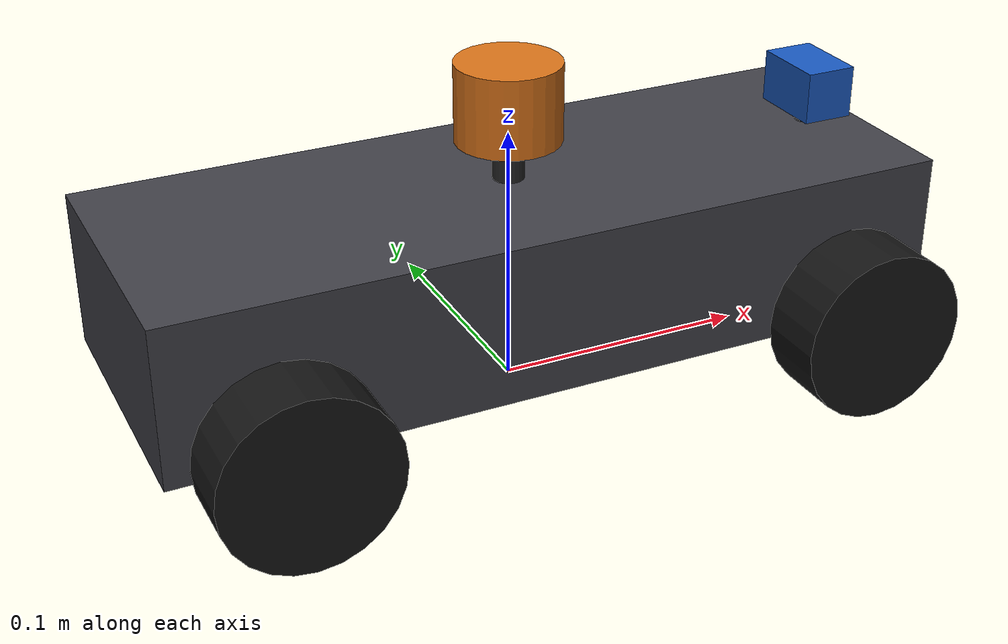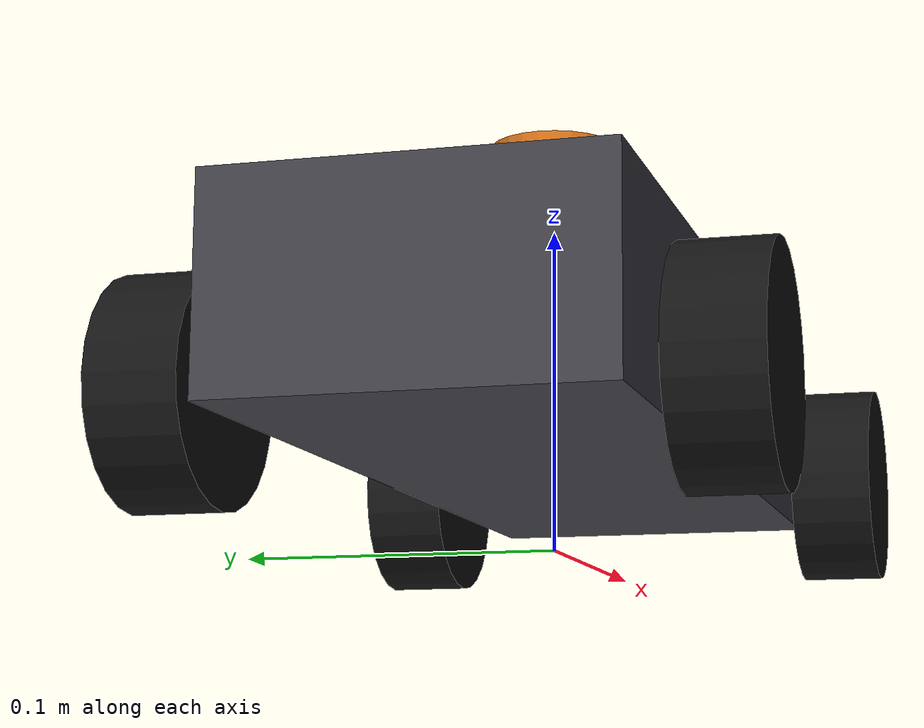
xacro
<?xml version="1.0"?>
<robot name="ackermann_car" xmlns:xacro="http://www.ros.org/wiki/xacro">

  <!-- ===================== Physical dimensions (Step 7 decisions) ===================== -->
  <!-- Mirrored in config/robot_dimensions.yaml for runtime nodes (controller, ml) that
       need these values at runtime rather than at xacro compile time. -->

  <xacro:property name="wheel_radius"    value="0.0325"/>   <!-- 32.5 mm -->
  <xacro:property name="wheel_width"     value="0.026"/>    <!-- 26 mm -->
  <xacro:property name="wheel_mass"      value="0.05"/>     <!-- kg -->

  <xacro:property name="wheelbase"       value="0.220"/>    <!-- 220 mm, front-rear axle distance -->
  <xacro:property name="track_width"     value="0.150"/>    <!-- 150 mm, left-right axle centerline distance -->

  <xacro:property name="chassis_length"  value="0.300"/>    <!-- 300 mm -->
  <xacro:property name="chassis_width"   value="0.110"/>    <!-- 110 mm -->
  <xacro:property name="chassis_height"  value="0.060"/>    <!-- 60 mm -->
  <xacro:property name="chassis_mass"    value="1.2"/>      <!-- kg -->
  <xacro:property name="chassis_z_offset" value="0.02"/>    <!-- chassis center height above base_link -->

  <xacro:property name="steering_mass"   value="0.02"/>     <!-- kg -->
  <xacro:property name="steering_limit"  value="0.785"/>     <!-- rad, ~20 degrees -->

  <xacro:property name="camera_x" value="0.13"/>
  <xacro:property name="camera_z" value="0.065"/>
  <xacro:property name="lidar_x"  value="0.0"/>
  <xacro:property name="lidar_z"  value="0.08"/>

  <!-- ===================== Module includes ===================== -->
  <xacro:include filename="$(find ackermann_description)/urdf/materials.xacro"/>
  <xacro:include filename="$(find ackermann_description)/urdf/macros.xacro"/>
  <xacro:include filename="$(find ackermann_description)/urdf/base.xacro"/>
  <xacro:include filename="$(find ackermann_description)/urdf/wheel.xacro"/>
  <xacro:include filename="$(find ackermann_description)/urdf/steering.xacro"/>
  <xacro:include filename="$(find ackermann_description)/urdf/camera.xacro"/>
  <xacro:include filename="$(find ackermann_description)/urdf/lidar.xacro"/>
  <xacro:include filename="$(find ackermann_description)/urdf/ros2_control.xacro"/>
  <xacro:include filename="$(find ackermann_description)/urdf/gazebo.xacro"/>

  <!-- ===================== Wheel instantiation ===================== -->
  <!-- Rear wheels: attach directly to base_link, spin only (no steering DOF) -->
  <xacro:wheel name="rear_left"  parent="base_link" x="${-wheelbase/2}" y="${ track_width/2}" z="0"/>
  <xacro:wheel name="rear_right" parent="base_link" x="${-wheelbase/2}" y="${-track_width/2}" z="0"/>

  <!-- Front wheels: steering knuckle attaches to base_link, wheel attaches to knuckle -->
  <xacro:steering_wheel name="front_left"  x="${wheelbase/2}" y="${ track_width/2}" z="0"/>
  <xacro:steering_wheel name="front_right" x="${wheelbase/2}" y="${-track_width/2}" z="0"/>

  <!-- ===================== Sensor Instantiation ===================== -->
  <xacro:camera_sensor x="${camera_x}" y="0" z="${camera_z}"/>
  <xacro:lidar_sensor x="${lidar_x}" y="0" z="${lidar_z}"/>

</robot>

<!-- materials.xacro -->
<robot xmlns:xacro="http://www.ros.org/wiki/xacro">

  <material name="chassis_gray">
    <color rgba="0.25 0.25 0.28 1.0"/>
  </material>

  <material name="wheel_black">
    <color rgba="0.08 0.08 0.08 1.0"/>
  </material>

  <material name="steering_dark">
    <color rgba="0.15 0.15 0.15 1.0"/>
  </material>

  <material name="camera_blue">
    <color rgba="0.10 0.35 0.75 1.0"/>
  </material>

  <material name="lidar_orange">
    <color rgba="0.85 0.45 0.10 1.0"/>
  </material>

</robot>

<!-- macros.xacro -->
<robot xmlns:xacro="http://www.ros.org/wiki/xacro">

  <xacro:macro name="box_inertia" params="mass x y z">
    <inertial>
      <mass value="${mass}"/>
      <inertia
        ixx="${(1/12) * mass * (y*y + z*z)}" ixy="0.0" ixz="0.0"
        iyy="${(1/12) * mass * (x*x + z*z)}" iyz="0.0"
        izz="${(1/12) * mass * (x*x + y*y)}"/>
    </inertial>
  </xacro:macro>

  <xacro:macro name="cylinder_inertia" params="mass radius length">
    <inertial>
      <mass value="${mass}"/>
      <inertia
        ixx="${(1/12) * mass * (3*radius*radius + length*length)}" ixy="0.0" ixz="0.0"
        iyy="${(1/12) * mass * (3*radius*radius + length*length)}" iyz="0.0"
        izz="${0.5 * mass * radius*radius}"/>
    </inertial>
  </xacro:macro>

  <xacro:macro name="sphere_inertia" params="mass radius">
    <inertial>
      <mass value="${mass}"/>
      <inertia
        ixx="${0.4 * mass * radius*radius}" ixy="0.0" ixz="0.0"
        iyy="${0.4 * mass * radius*radius}" iyz="0.0"
        izz="${0.4 * mass * radius*radius}"/>
    </inertial>
  </xacro:macro>

</robot>

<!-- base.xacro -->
<robot xmlns:xacro="http://www.ros.org/wiki/xacro">

  <!-- base_footprint: ground-projected reference frame (z=0), REP-105 convention -->
  <link name="base_footprint"/>

  <joint name="base_footprint_to_base_link" type="fixed">
    <parent link="base_footprint"/>
    <child link="base_link"/>
    <!-- base_link sits at wheel-axle height above the ground -->
    <origin xyz="0 0 ${wheel_radius}" rpy="0 0 0"/>
  </joint>

  <!-- base_link: robot origin, centered between front and rear axles -->
  <link name="base_link">
    <visual>
      <origin xyz="0 0 ${chassis_z_offset}" rpy="0 0 0"/>
      <geometry>
        <box size="${chassis_length} ${chassis_width} ${chassis_height}"/>
      </geometry>
      <material name="chassis_gray"/>
    </visual>
    <collision>
      <origin xyz="0 0 ${chassis_z_offset}" rpy="0 0 0"/>
      <geometry>
        <box size="${chassis_length} ${chassis_width} ${chassis_height}"/>
      </geometry>
    </collision>
    <xacro:box_inertia mass="${chassis_mass}" x="${chassis_length}" y="${chassis_width}" z="${chassis_height}"/>
  </link>

</robot>

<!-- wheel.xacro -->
<robot xmlns:xacro="http://www.ros.org/wiki/xacro">

  <xacro:macro name="wheel" params="name parent x y z">
    <link name="${name}_wheel">
      <visual>
        <origin xyz="0 0 0" rpy="${pi/2} 0 0"/>
        <geometry>
          <cylinder radius="${wheel_radius}" length="${wheel_width}"/>
        </geometry>
        <material name="wheel_black"/>
      </visual>
      <collision>
        <origin xyz="0 0 0" rpy="${pi/2} 0 0"/>
        <geometry>
          <cylinder radius="${wheel_radius}" length="${wheel_width}"/>
        </geometry>
      </collision>
      <xacro:cylinder_inertia mass="${wheel_mass}" radius="${wheel_radius}" length="${wheel_width}"/>
    </link>

    <!-- Jenis continuous tiada lower/upper limit -->
    <joint name="${name}_wheel_joint" type="continuous">
      <parent link="${parent}"/>
      <child link="${name}_wheel"/>
      <origin xyz="${x} ${y} ${z}" rpy="0 0 0"/>
      <!-- Tukar kepada -1 supaya +velocity bergerak ke depan -->
      <axis xyz="0 1 0"/>
      <!-- Hanya perlukan effort dan velocity limit -->
      <limit effort="100.0" velocity="50.0"/>
      <!-- Kurangkan damping dan friction kepada 0.001 untuk elak lambat & bengkok -->
      <dynamics damping="0.001" friction="0.001"/>
    </joint>
  </xacro:macro>

</robot>

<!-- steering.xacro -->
<robot xmlns:xacro="http://www.ros.org/wiki/xacro">

  <xacro:macro name="steering_wheel" params="name x y z">

    <link name="${name}_steering">
      <visual>
        <geometry>
          <cylinder radius="0.008" length="0.02"/>
        </geometry>
        <material name="steering_dark"/>
      </visual>
      <collision>
        <geometry>
          <cylinder radius="0.008" length="0.02"/>
        </geometry>
      </collision>
      <xacro:cylinder_inertia mass="${steering_mass}" radius="0.008" length="0.02"/>
    </link>

    <joint name="${name}_steering_joint" type="revolute">
      <parent link="base_link"/>
      <child link="${name}_steering"/>
      <origin xyz="${x} ${y} ${z}" rpy="0 0 0"/>
      <axis xyz="0 0 1"/>
      <limit lower="${-steering_limit}" upper="${steering_limit}"
             effort="10.0" velocity="4.0"/>
      <dynamics damping="0.001" friction="0.001"/>
    </joint>

    <!-- the wheel hangs off the steering knuckle, not off base_link directly -->
    <xacro:wheel name="${name}" parent="${name}_steering" x="0" y="0" z="0"/>

  </xacro:macro>

</robot>

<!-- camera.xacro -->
<robot xmlns:xacro="http://www.ros.org/wiki/xacro">

  <xacro:macro name="camera_sensor" params="x y z">
    <link name="camera_link">
      <!-- Main Camera Body -->
      <visual>
        <geometry>
          <box size="0.02 0.03 0.02"/>
        </geometry>
        <material name="camera_blue"/>
      </visual>
      <collision>
        <geometry>
          <box size="0.02 0.03 0.02"/>
        </geometry>
      </collision>

      <!-- Cosmetic mounting post -->
      <visual>
        <origin xyz="0 0 -0.0125" rpy="0 0 0"/>
        <geometry>
          <cylinder radius="0.004" length="0.005"/>
        </geometry>
        <material name="steering_dark"/>
      </visual>

      <xacro:box_inertia mass="0.05" x="0.02" y="0.03" z="0.02"/>
    </link>

    <joint name="camera_joint" type="fixed">
      <parent link="base_link"/>
      <child link="camera_link"/>
      <origin xyz="${x} ${y} ${z}" rpy="0 0 0"/>
    </joint>

    <!-- REP-103 Optical Frame untuk Machine Learning / OpenCV -->
    <link name="camera_optical_frame"/>

    <joint name="camera_optical_joint" type="fixed">
      <parent link="camera_link"/>
      <child link="camera_optical_frame"/>
      <origin xyz="0 0 0" rpy="${-pi/2} 0 ${-pi/2}"/>
    </joint>
  </xacro:macro>

</robot>

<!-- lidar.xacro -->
<robot xmlns:xacro="http://www.ros.org/wiki/xacro">

  <xacro:macro name="lidar_sensor" params="x y z">
    <link name="laser_link">
      <!-- Main LiDAR Body -->
      <visual>
        <geometry>
          <cylinder radius="0.02" length="0.03"/>
        </geometry>
        <material name="lidar_orange"/>
      </visual>
      <collision>
        <geometry>
          <cylinder radius="0.02" length="0.03"/>
        </geometry>
      </collision>

      <!-- Cosmetic mounting post (menyambungkan LiDAR ke bumbung) -->
      <visual>
        <origin xyz="0 0 -0.0225" rpy="0 0 0"/>
        <geometry>
          <cylinder radius="0.006" length="0.015"/>
        </geometry>
        <material name="steering_dark"/>
      </visual>

      <xacro:cylinder_inertia mass="0.10" radius="0.02" length="0.03"/>
    </link>

    <joint name="laser_joint" type="fixed">
      <parent link="base_link"/>
      <child link="laser_link"/>
      <origin xyz="${x} ${y} ${z}" rpy="0 0 0"/>
    </joint>
  </xacro:macro>

</robot>
